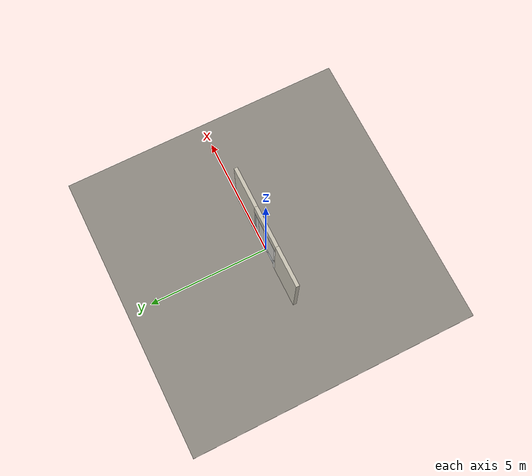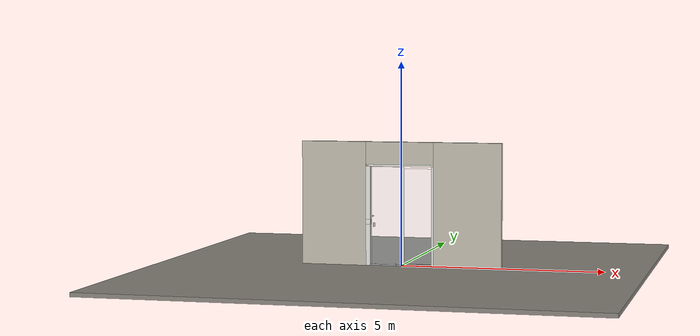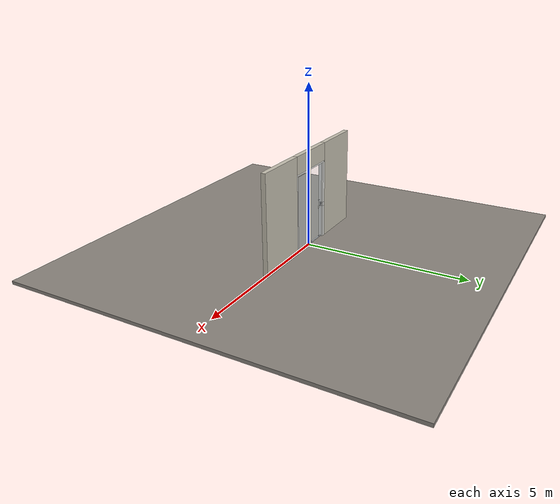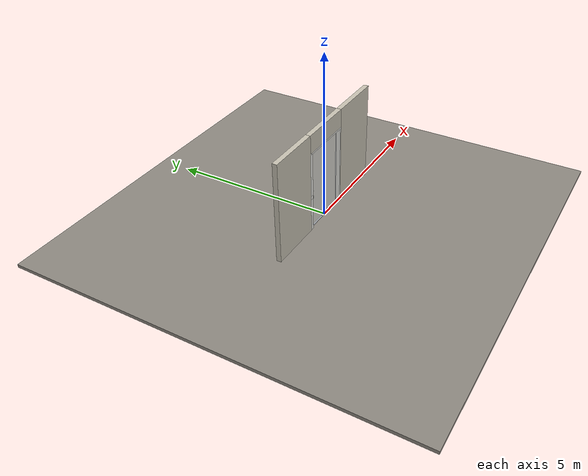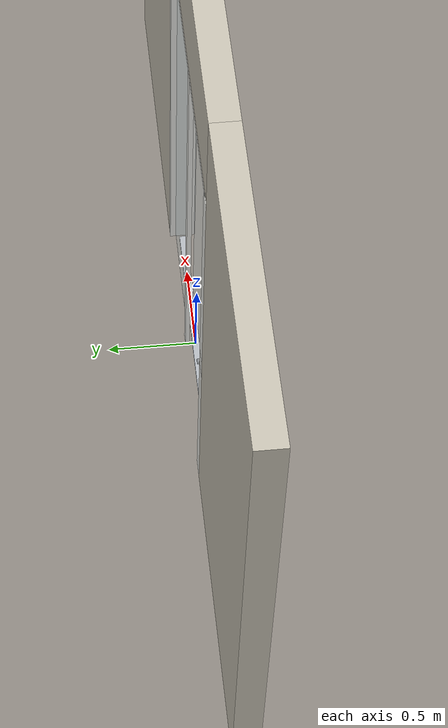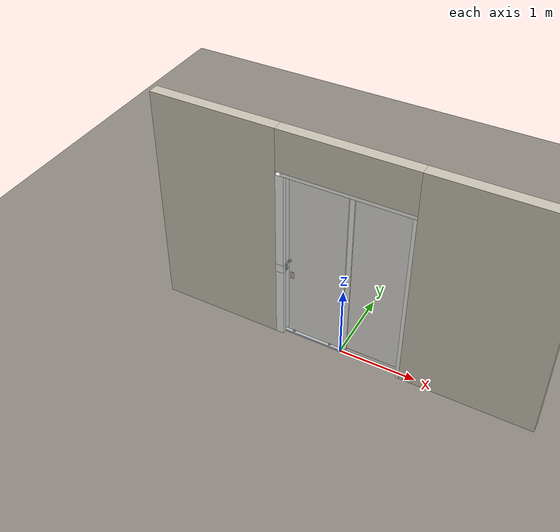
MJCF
<?xml version="1.0" ?>
<mujoco model="db0417_sliding_single_simple">
  <compiler angle="radian" meshdir="../../hardware" texturedir="../../textures" autolimits="true" inertiafromgeom="false"/>
  <option timestep="0.002" integrator="implicitfast" cone="elliptic" impratio="10" noslip_iterations="3">
    <flag multiccd="enable"/>
  </option>
  <size memory="16M"/>
  <default>
    <geom condim="4" solref="0.005 1" solimp="0.95 0.99 0.001"/>
    <joint solreflimit="0.005 1" solimplimit="0.95 0.99 0.001"/>
    <tendon solreflimit="0.005 1"/>
    <equality solref="0.002 1"/>
  </default>
  <visual>
    <headlight ambient="0.4 0.4 0.4" diffuse="0.7 0.7 0.7" specular="0.2 0.2 0.2"/>
    <quality shadowsize="4096"/>
    <map znear="0.01" zfar="60"/>
  </visual>
  <asset>
    <mesh name="thumbturn_eb5c9899a3" file="thumbturn_eb5c9899a3.obj"/>
    <material name="mat_floor" rgba="0.55 0.53 0.5 1" specular="0.2" shininess="0.15" reflectance="0"/>
    <material name="mat_wall" rgba="0.78 0.76 0.7 1" specular="0.2" shininess="0.1" reflectance="0"/>
    <material name="mat_frame" rgba="0.92 0.92 0.9 1" specular="0.2" shininess="0.6" reflectance="0"/>
    <material name="mat_track" rgba="0.8 0.81 0.83 1" specular="0.8" shininess="0.6" reflectance="0.4"/>
    <material name="mat_fixed_glass" rgba="0.85 0.92 0.95 0.25" specular="0.2" shininess="0.95" reflectance="0.1"/>
    <material name="mat_leaf" rgba="0.85 0.92 0.95 0.25" specular="0.2" shininess="0.95" reflectance="0.1"/>
    <material name="mat_glass_leaf" rgba="0.85 0.92 0.95 0.25" specular="0.2" shininess="0.95" reflectance="0.1"/>
    <material name="mat_patch" rgba="0.75 0.76 0.77 1" specular="0.8" shininess="0.65" reflectance="0.4"/>
    <material name="mat_roller" rgba="0.65 0.66 0.68 1" specular="0.74" shininess="0.5" reflectance="0.36"/>
    <material name="mat_op_nickel_satin" rgba="0.72 0.7 0.66 1" specular="0.8" shininess="0.65" reflectance="0.4"/>
    <material name="mat_hook" rgba="0.75 0.76 0.77 1" specular="0.8" shininess="0.65" reflectance="0.4"/>
    <texture name="skybox" type="skybox" builtin="gradient" rgb1="0.6 0.7 0.85" rgb2="0.9 0.92 0.95" width="256" height="256"/>
  </asset>
  <worldbody>
    <light name="sun" pos="1.5 -2.5 4" dir="-0.3 0.5 -0.8" directional="true" diffuse="0.8 0.8 0.8" specular="0.3 0.3 0.3" castshadow="true"/>
    <light name="fill" pos="-1.5 2.5 3" dir="0.3 -0.5 -0.7" directional="true" diffuse="0.35 0.35 0.4" castshadow="false"/>
    <camera name="robot_view" pos="0 -2.917187 2.039312" xyaxes="1 0 0 0 0.26963 0.962964" fovy="52"/>
    <camera name="far_view" pos="0 2.917187 2.039312" xyaxes="-1 0 0 0 -0.26963 0.962964" fovy="52"/>
    <camera name="iso" pos="2.217062 -2.450438 2.506062" xyaxes="0.741536 0.670913 0 -0.242917 0.268487 0.932151" fovy="46"/>
    <camera name="detail_handle" pos="-0.497 -0.8225 1.28" xyaxes="0.97561 0.219512 0 -0.070934 0.315262 0.94635" fovy="38"/>
    <geom name="floor" type="box" size="6 6 0.05" pos="0 0 -0.05" material="mat_floor" group="0" contype="1" conaffinity="1" friction="0.8 0.005 0.0001" density="2400"/>
    <geom name="wall_left" type="box" size="0.8115 0.0725 1.5225" pos="-1.6885 0 1.5225" material="mat_wall" group="0" contype="1" conaffinity="1" friction="0.6 0.005 0.0001" density="800"/>
    <geom name="wall_right" type="box" size="0.8415 0.0725 1.5225" pos="1.6585 0 1.5225" material="mat_wall" group="0" contype="1" conaffinity="1" friction="0.6 0.005 0.0001" density="800"/>
    <geom name="wall_header" type="box" size="0.847 0.0725 0.2775" pos="-0.03 0 2.7675" material="mat_wall" group="0" contype="1" conaffinity="1" friction="0.6 0.005 0.0001" density="800"/>
    <geom name="jamb_r" type="box" size="0.0225 0.0725 1.2225" pos="0.7945 0 1.2225" material="mat_frame" group="0" contype="1" conaffinity="1" friction="0.6 0.005 0.0001" density="300"/>
    <geom name="jamb_head" type="box" size="0.817 0.0725 0.0225" pos="0 0 2.4675" material="mat_frame" group="0" contype="1" conaffinity="1" friction="0.6 0.005 0.0001" density="300"/>
    <geom name="fixed_panel_glass" type="box" size="0.366 0.003 1.1725" pos="0.386 0.04 1.2225" material="mat_fixed_glass" group="0" contype="1" conaffinity="1" friction="0.6 0.005 0.0001" density="2500"/>
    <geom name="fixed_panel_stile" type="box" size="0.03 0.012 1.2225" pos="0.03 0.0475 1.2225" material="mat_frame" group="0" contype="1" conaffinity="1" friction="0.6 0.005 0.0001" density="1400"/>
    <geom name="bottom_rail" type="box" size="0.7815 0.02 0.012" pos="-0.0355 0 0.012" material="mat_track" group="0" contype="1" conaffinity="1" friction="0.6 0.005 0.0001" density="2700"/>
    <geom name="leaf_hook_keeper" type="box" size="0.008 0.015 0.006" pos="-0.785 0 1.08" material="mat_hook" group="0" contype="1" conaffinity="1" friction="0.6 0.005 0.0001" density="7900"/>
    <geom name="jamb_latch_pwall_1080_n" type="box" size="0.0525 0.022 0.06" pos="-0.8245 -0.0505 1.08" material="mat_frame" group="0" contype="1" conaffinity="1" friction="0.6 0.005 0.0001" density="300"/>
    <geom name="jamb_latch_pwall_1080_p" type="box" size="0.0525 0.022 0.06" pos="-0.8245 0.0505 1.08" material="mat_frame" group="0" contype="1" conaffinity="1" friction="0.6 0.005 0.0001" density="300"/>
    <geom name="jamb_latch_pback_1080" type="box" size="0.004 0.0285 0.06" pos="-0.873 0 1.08" material="mat_frame" group="0" contype="1" conaffinity="1" friction="0.6 0.005 0.0001" density="300"/>
    <geom name="jamb_latch_0" type="box" size="0.0525 0.0725 0.51" pos="-0.8245 0 0.51" material="mat_frame" group="0" contype="1" conaffinity="1" friction="0.6 0.005 0.0001" density="300"/>
    <geom name="jamb_latch_1" type="box" size="0.0525 0.0725 0.6525" pos="-0.8245 0 1.7925" material="mat_frame" group="0" contype="1" conaffinity="1" friction="0.6 0.005 0.0001" density="300"/>
    <geom name="leaf_hook_keeper_plate_b" type="box" size="0.0345 0.003 0.0005" pos="-0.7715 0 1.017" quat="0.5 0.5 0.5 0.5" material="mat_hook" group="1" contype="0" conaffinity="0" density="7800"/>
    <geom name="leaf_hook_keeper_plate_l" type="box" size="0.003 0.06 0.0005" pos="-0.7715 -0.0315 1.08" quat="0.5 0.5 0.5 0.5" material="mat_hook" group="1" contype="0" conaffinity="0" density="7800"/>
    <geom name="leaf_hook_keeper_plate_t" type="box" size="0.0345 0.003 0.0005" pos="-0.7715 0 1.143" quat="0.5 0.5 0.5 0.5" material="mat_hook" group="1" contype="0" conaffinity="0" density="7800"/>
    <geom name="leaf_hook_keeper_plate_r" type="box" size="0.003 0.06 0.0005" pos="-0.7715 0.0315 1.08" quat="0.5 0.5 0.5 0.5" material="mat_hook" group="1" contype="0" conaffinity="0" density="7800"/>
    <geom name="leaf_hook_keeper_bracket" type="box" size="0.0064 0.00725 0.005" pos="-0.785 0.02175 1.08" material="mat_hook" group="1" contype="0" conaffinity="0" density="7850"/>
    <site name="approach_point" pos="0 -1.5 0" quat="1 0 0 0" size="0.05" rgba="0.2 0.9 0.2 0.5" group="4"/>
    <site name="goal_point" pos="0 1.5 0" quat="1 0 0 0" size="0.05" rgba="0.2 0.9 0.2 0.5" group="4"/>
    <site name="door_plane_center" pos="0 0 1.2225" quat="1 0 0 0" size="0.02" rgba="0.2 0.9 0.2 0.5" group="4"/>
    <body name="leaf" pos="-0.386 0 0">
      <inertial pos="-0.000152 -0.000002 1.227086" mass="129.723726" quat="0.499967 0.499962 0.500038 -0.500033" diaginertia="6.306913579 62.56171216 68.824937962"/>
      <joint name="leaf_slide" type="slide" axis="1 0 0" limited="true" range="0 0.701" damping="8.498736" frictionloss="24.855023" armature="0.5"/>
      <geom name="leaf_glass" type="box" size="0.381 0.0225 1.2" pos="0 0 1.23" material="mat_glass_leaf" group="0" contype="1" conaffinity="1" friction="0.4 0.005 0.0001" density="1"/>
      <geom name="leaf_roller_0" type="cylinder" size="0.015 0.008" pos="-0.266 0 0.039" quat="0.707107 -0.707107 0 0" material="mat_roller" group="1" contype="0" conaffinity="0" density="7850"/>
      <geom name="leaf_roller_1" type="cylinder" size="0.015 0.008" pos="0.236 0 0.039" quat="0.707107 -0.707107 0 0" material="mat_roller" group="1" contype="0" conaffinity="0" density="7850"/>
      <geom name="leaf_pull_n" type="box" size="0.025 0.0005 0.05" pos="-0.291 -0.023 1" material="mat_op_nickel_satin" group="1" contype="0" conaffinity="0" density="1000"/>
      <geom name="leaf_hook_faceplate" type="box" size="0.0006 0.011 0.045" pos="-0.3804 0 1.08" material="mat_hook" group="1" contype="0" conaffinity="0" density="7900"/>
      <site name="leaf_pull_grip_n" pos="-0.291 -0.0225 1" quat="1 0 0 0" size="0.012" rgba="0.2 0.9 0.2 0.5" group="4"/>
      <site name="leaf_edge_mid" pos="-0.381 0 1.23" quat="1 0 0 0" size="0.02" rgba="0.2 0.9 0.2 0.5" group="4"/>
      <body name="leaf_hook_thumbturn" pos="-0.321 -0.0225 1.22">
        <inertial pos="0 -0.012928 0" mass="0.178946" quat="0.678504 0.199079 -0.199079 -0.678504" diaginertia="0.000026045 0.000026215 0.000032438"/>
        <joint name="leaf_hook_thumbturn_hinge" type="hinge" axis="0 1 0" limited="true" range="0 1" damping="0.05" frictionloss="0.25" armature="0.005" ref="1"/>
        <geom name="leaf_hook_tt_mesh" type="mesh" mesh="thumbturn_eb5c9899a3" pos="0 0 0" quat="0.339005 0.339005 -0.620545 0.620545" material="mat_hook" group="0" contype="1" conaffinity="1" friction="0.6 0.005 0.0001" density="7100"/>
        <geom name="leaf_hook_tt_col" type="box" size="0.006 0.012 0.016" pos="0 -0.02 0" quat="0.877583 0 0.479426 0" material="mat_hook" group="3" contype="1" conaffinity="1" rgba="0.8 0.3 0.3 0.25" friction="0.6 0.005 0.0001" density="7100"/>
        <site name="leaf_hook_tt_grip" pos="0 -0.03 0" quat="0.877583 0 0.479426 0" size="0.01" rgba="0.2 0.9 0.2 0.5" group="4"/>
      </body>
      <body name="leaf_hook" pos="-0.381 0 1.08">
        <inertial pos="-0.006651 0 -0.027503" mass="0.072048" quat="0.148813 -0.148813 0.69127 0.69127" diaginertia="0.000005266 0.00001511 0.000019175"/>
        <joint name="leaf_hook_hinge" type="hinge" axis="0 -1 0" limited="true" range="0 1" damping="0.05" frictionloss="0.1" armature="0.005" ref="1"/>
        <geom name="leaf_hook_arm" type="box" size="0.022 0.005 0.006" pos="0.002657 0 -0.025474" quat="0.877583 0 -0.479426 0" material="mat_hook" group="0" contype="1" conaffinity="1" friction="0.6 0.005 0.0001" density="7900"/>
        <geom name="leaf_hook_tip" type="box" size="0.006 0.005 0.016" pos="-0.019451 0 -0.030293" quat="0.877583 0 -0.479426 0" material="mat_hook" group="0" contype="1" conaffinity="1" friction="0.6 0.005 0.0001" density="7900"/>
      </body>
    </body>
  </worldbody>
  <equality>
    <joint name="leaf_hook_couple" joint1="leaf_hook_hinge" joint2="leaf_hook_thumbturn_hinge" polycoef="0 1 0 0 0" active="true"/>
  </equality>
  <sensor>
    <jointpos name="leaf_slide_pos" joint="leaf_slide"/>
    <jointvel name="leaf_slide_vel" joint="leaf_slide"/>
    <jointpos name="leaf_hook_thumbturn_hinge_pos" joint="leaf_hook_thumbturn_hinge"/>
    <jointvel name="leaf_hook_thumbturn_hinge_vel" joint="leaf_hook_thumbturn_hinge"/>
    <jointpos name="leaf_hook_hinge_pos" joint="leaf_hook_hinge"/>
    <jointvel name="leaf_hook_hinge_vel" joint="leaf_hook_hinge"/>
  </sensor>
</mujoco>
